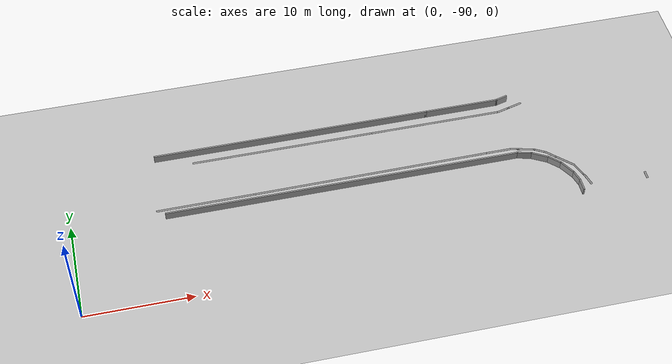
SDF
<sdf version="1.6">
 <world name="default">
  <model name="ground_plane">
   <static>1</static>
   <link name="link">
    <collision name="collision">
     <geometry><plane><normal>0 0 1</normal><size>100 100</size></plane></geometry>
     <surface>
      <contact><collide_bitmask>65535</collide_bitmask></contact>
      <friction><ode><mu>100</mu><mu2>50</mu2></ode></friction>
     </surface>
    </collision>
    <visual name="visual">
     <cast_shadows>0</cast_shadows>
     <geometry><plane><normal>0 0 1</normal><size>100 100</size></plane></geometry>
     <material>
      <script><uri>file://media/materials/scripts/gazebo.material</uri><name>Gazebo/Grey</name></script>
     </material>
    </visual>
   </link>
  </model>
  <model name="GercekDuvarSeritKoyu1">
   <link name="Wall_101">
    <pose>18.8696 -38.2416 0 0 -0 1.56992</pose>
    <inertial>
     <mass>1</mass>
     <inertia><ixx>1</ixx><ixy>0</ixy><ixz>0</ixz><iyy>1</iyy><iyz>0</iyz><izz>1</izz></inertia>
    </inertial>
    <visual name="Wall_101_Visual">
     <pose>0 0 0.375 0 -0 0</pose>
     <geometry><box><size>26.5 0.15 0.75</size></box></geometry>
     <material>
      <script><uri>file://media/materials/scripts/gazebo.material</uri><name>Gazebo/Grey</name></script>
      <ambient>0.5 0.5 0.5 1</ambient>
      <shader type="pixel"><normal_map>__default__</normal_map></shader>
      <diffuse>0.7 0.7 0.7 1</diffuse>
      <specular>0.01 0.01 0.01 1</specular>
      <emissive>0 0 0 1</emissive>
     </material>
     <meta><layer>0</layer></meta>
    </visual>
    <collision name="Wall_101_Collision">
     <pose>0 0 0.375 0 -0 0</pose>
     <geometry><box><size>26.5 0.15 0.75</size></box></geometry>
     <surface>
      <friction>
       <ode><mu>1</mu><mu2>1</mu2><fdir1>0 0 0</fdir1><slip1>0</slip1><slip2>0</slip2></ode>
       <torsional>
        <coefficient>1</coefficient>
        <patch_radius>0</patch_radius>
        <surface_radius>0</surface_radius>
        <use_patch_radius>1</use_patch_radius>
        <ode><slip>0</slip></ode>
       </torsional>
      </friction>
      <bounce><restitution_coefficient>0</restitution_coefficient><threshold>1e+06</threshold></bounce>
      <contact>
       <collide_without_contact>0</collide_without_contact>
       <collide_without_contact_bitmask>1</collide_without_contact_bitmask>
       <collide_bitmask>1</collide_bitmask>
       <ode>
        <soft_cfm>0</soft_cfm>
        <soft_erp>0.2</soft_erp>
        <kp>1e+13</kp>
        <kd>1</kd>
        <max_vel>0.01</max_vel>
        <min_depth>0</min_depth>
       </ode>
       <bullet>
        <split_impulse>1</split_impulse>
        <split_impulse_penetration_threshold>-0.01</split_impulse_penetration_threshold>
        <soft_cfm>0</soft_cfm>
        <soft_erp>0.2</soft_erp>
        <kp>1e+13</kp>
        <kd>1</kd>
       </bullet>
      </contact>
     </surface>
    </collision>
   </link>
   <link name="Wall_103">
    <pose>18.8811 -21.5166 0 0 -0 1.5708</pose>
    <inertial>
     <mass>1</mass>
     <inertia><ixx>1</ixx><ixy>0</ixy><ixz>0</ixz><iyy>1</iyy><iyz>0</iyz><izz>1</izz></inertia>
    </inertial>
    <visual name="Wall_103_Visual">
     <pose>0 0 0.375 0 -0 0</pose>
     <geometry><box><size>7.25 0.15 0.75</size></box></geometry>
     <material>
      <script><uri>file://media/materials/scripts/gazebo.material</uri><name>Gazebo/Grey</name></script>
      <ambient>0.5 0.5 0.5 1</ambient>
      <shader type="pixel"><normal_map>__default__</normal_map></shader>
      <diffuse>0.7 0.7 0.7 1</diffuse>
      <specular>0.01 0.01 0.01 1</specular>
      <emissive>0 0 0 1</emissive>
     </material>
     <meta><layer>0</layer></meta>
    </visual>
    <collision name="Wall_103_Collision">
     <pose>0 0 0.375 0 -0 0</pose>
     <geometry><box><size>7.25 0.15 0.75</size></box></geometry>
     <surface>
      <friction>
       <ode><mu>1</mu><mu2>1</mu2><fdir1>0 0 0</fdir1><slip1>0</slip1><slip2>0</slip2></ode>
       <torsional>
        <coefficient>1</coefficient>
        <patch_radius>0</patch_radius>
        <surface_radius>0</surface_radius>
        <use_patch_radius>1</use_patch_radius>
        <ode><slip>0</slip></ode>
       </torsional>
      </friction>
      <bounce><restitution_coefficient>0</restitution_coefficient><threshold>1e+06</threshold></bounce>
      <contact>
       <collide_without_contact>0</collide_without_contact>
       <collide_without_contact_bitmask>1</collide_without_contact_bitmask>
       <collide_bitmask>1</collide_bitmask>
       <ode>
        <soft_cfm>0</soft_cfm>
        <soft_erp>0.2</soft_erp>
        <kp>1e+13</kp>
        <kd>1</kd>
        <max_vel>0.01</max_vel>
        <min_depth>0</min_depth>
       </ode>
       <bullet>
        <split_impulse>1</split_impulse>
        <split_impulse_penetration_threshold>-0.01</split_impulse_penetration_threshold>
        <soft_cfm>0</soft_cfm>
        <soft_erp>0.2</soft_erp>
        <kp>1e+13</kp>
        <kd>1</kd>
       </bullet>
      </contact>
     </surface>
    </collision>
   </link>
   <link name="Wall_105">
    <pose>18.7386 -17.4356 0 0 -0 1.83298</pose>
    <inertial>
     <mass>1</mass>
     <inertia><ixx>1</ixx><ixy>0</ixy><ixz>0</ixz><iyy>1</iyy><iyz>0</iyz><izz>1</izz></inertia>
    </inertial>
    <visual name="Wall_105_Visual">
     <pose>0 0 0.375 0 -0 0</pose>
     <geometry><box><size>1.25 0.15 0.75</size></box></geometry>
     <material>
      <script><uri>file://media/materials/scripts/gazebo.material</uri><name>Gazebo/Grey</name></script>
      <ambient>0.5 0.5 0.5 1</ambient>
      <shader type="pixel"><normal_map>__default__</normal_map></shader>
      <diffuse>0.7 0.7 0.7 1</diffuse>
      <specular>0.01 0.01 0.01 1</specular>
      <emissive>0 0 0 1</emissive>
     </material>
     <meta><layer>0</layer></meta>
    </visual>
    <collision name="Wall_105_Collision">
     <pose>0 0 0.375 0 -0 0</pose>
     <geometry><box><size>1.25 0.15 0.75</size></box></geometry>
     <surface>
      <friction>
       <ode><mu>1</mu><mu2>1</mu2><fdir1>0 0 0</fdir1><slip1>0</slip1><slip2>0</slip2></ode>
       <torsional>
        <coefficient>1</coefficient>
        <patch_radius>0</patch_radius>
        <surface_radius>0</surface_radius>
        <use_patch_radius>1</use_patch_radius>
        <ode><slip>0</slip></ode>
       </torsional>
      </friction>
      <bounce><restitution_coefficient>0</restitution_coefficient><threshold>1e+06</threshold></bounce>
      <contact>
       <collide_without_contact>0</collide_without_contact>
       <collide_without_contact_bitmask>1</collide_without_contact_bitmask>
       <collide_bitmask>1</collide_bitmask>
       <ode>
        <soft_cfm>0</soft_cfm>
        <soft_erp>0.2</soft_erp>
        <kp>1e+13</kp>
        <kd>1</kd>
        <max_vel>0.01</max_vel>
        <min_depth>0</min_depth>
       </ode>
       <bullet>
        <split_impulse>1</split_impulse>
        <split_impulse_penetration_threshold>-0.01</split_impulse_penetration_threshold>
        <soft_cfm>0</soft_cfm>
        <soft_erp>0.2</soft_erp>
        <kp>1e+13</kp>
        <kd>1</kd>
       </bullet>
      </contact>
     </surface>
    </collision>
   </link>
   <link name="Wall_147">
    <pose>31.0351 -13.2326 0 0 -0 3.14159</pose>
    <inertial>
     <mass>1</mass>
     <inertia><ixx>1</ixx><ixy>0</ixy><ixz>0</ixz><iyy>1</iyy><iyz>0</iyz><izz>1</izz></inertia>
    </inertial>
    <visual name="Wall_147_Visual">
     <pose>0 0 0.375 0 -0 0</pose>
     <geometry><box><size>1.25 0.15 0.75</size></box></geometry>
     <material>
      <script><uri>file://media/materials/scripts/gazebo.material</uri><name>Gazebo/Grey</name></script>
      <ambient>0.5 0.5 0.5 1</ambient>
      <shader type="pixel"><normal_map>__default__</normal_map></shader>
      <diffuse>0.7 0.7 0.7 1</diffuse>
      <specular>0.01 0.01 0.01 1</specular>
      <emissive>0 0 0 1</emissive>
     </material>
     <meta><layer>0</layer></meta>
    </visual>
    <collision name="Wall_147_Collision">
     <pose>0 0 0.375 0 -0 0</pose>
     <geometry><box><size>1.25 0.15 0.75</size></box></geometry>
     <surface>
      <friction>
       <ode><mu>1</mu><mu2>1</mu2><fdir1>0 0 0</fdir1><slip1>0</slip1><slip2>0</slip2></ode>
       <torsional>
        <coefficient>1</coefficient>
        <patch_radius>0</patch_radius>
        <surface_radius>0</surface_radius>
        <use_patch_radius>1</use_patch_radius>
        <ode><slip>0</slip></ode>
       </torsional>
      </friction>
      <bounce><restitution_coefficient>0</restitution_coefficient><threshold>1e+06</threshold></bounce>
      <contact>
       <collide_without_contact>0</collide_without_contact>
       <collide_without_contact_bitmask>1</collide_without_contact_bitmask>
       <collide_bitmask>1</collide_bitmask>
       <ode>
        <soft_cfm>0</soft_cfm>
        <soft_erp>0.2</soft_erp>
        <kp>1e+13</kp>
        <kd>1</kd>
        <max_vel>0.01</max_vel>
        <min_depth>0</min_depth>
       </ode>
       <bullet>
        <split_impulse>1</split_impulse>
        <split_impulse_penetration_threshold>-0.01</split_impulse_penetration_threshold>
        <soft_cfm>0</soft_cfm>
        <soft_erp>0.2</soft_erp>
        <kp>1e+13</kp>
        <kd>1</kd>
       </bullet>
      </contact>
     </surface>
    </collision>
   </link>
   <link name="Wall_148">
    <pose>29.9541 -13.3746 0 0 0 -2.88029</pose>
    <inertial>
     <mass>1</mass>
     <inertia><ixx>1</ixx><ixy>0</ixy><ixz>0</ixz><iyy>1</iyy><iyz>0</iyz><izz>1</izz></inertia>
    </inertial>
    <visual name="Wall_148_Visual">
     <pose>0 0 0.375 0 -0 0</pose>
     <geometry><box><size>1.25 0.15 0.75</size></box></geometry>
     <material>
      <script><uri>file://media/materials/scripts/gazebo.material</uri><name>Gazebo/Grey</name></script>
      <ambient>0.5 0.5 0.5 1</ambient>
      <shader type="pixel"><normal_map>__default__</normal_map></shader>
      <diffuse>0.7 0.7 0.7 1</diffuse>
      <specular>0.01 0.01 0.01 1</specular>
      <emissive>0 0 0 1</emissive>
     </material>
     <meta><layer>0</layer></meta>
    </visual>
    <collision name="Wall_148_Collision">
     <pose>0 0 0.375 0 -0 0</pose>
     <geometry><box><size>1.25 0.15 0.75</size></box></geometry>
     <surface>
      <friction>
       <ode><mu>1</mu><mu2>1</mu2><fdir1>0 0 0</fdir1><slip1>0</slip1><slip2>0</slip2></ode>
       <torsional>
        <coefficient>1</coefficient>
        <patch_radius>0</patch_radius>
        <surface_radius>0</surface_radius>
        <use_patch_radius>1</use_patch_radius>
        <ode><slip>0</slip></ode>
       </torsional>
      </friction>
      <bounce><restitution_coefficient>0</restitution_coefficient><threshold>1e+06</threshold></bounce>
      <contact>
       <collide_without_contact>0</collide_without_contact>
       <collide_without_contact_bitmask>1</collide_without_contact_bitmask>
       <collide_bitmask>1</collide_bitmask>
       <ode>
        <soft_cfm>0</soft_cfm>
        <soft_erp>0.2</soft_erp>
        <kp>1e+13</kp>
        <kd>1</kd>
        <max_vel>0.01</max_vel>
        <min_depth>0</min_depth>
       </ode>
       <bullet>
        <split_impulse>1</split_impulse>
        <split_impulse_penetration_threshold>-0.01</split_impulse_penetration_threshold>
        <soft_cfm>0</soft_cfm>
        <soft_erp>0.2</soft_erp>
        <kp>1e+13</kp>
        <kd>1</kd>
       </bullet>
      </contact>
     </surface>
    </collision>
   </link>
   <link name="Wall_149">
    <pose>28.7301 -13.9166 0 0 0 -2.61811</pose>
    <inertial>
     <mass>1</mass>
     <inertia><ixx>1</ixx><ixy>0</ixy><ixz>0</ixz><iyy>1</iyy><iyz>0</iyz><izz>1</izz></inertia>
    </inertial>
    <visual name="Wall_149_Visual">
     <pose>0 0 0.375 0 -0 0</pose>
     <geometry><box><size>1.75 0.15 0.75</size></box></geometry>
     <material>
      <script><uri>file://media/materials/scripts/gazebo.material</uri><name>Gazebo/Grey</name></script>
      <ambient>0.5 0.5 0.5 1</ambient>
      <shader type="pixel"><normal_map>__default__</normal_map></shader>
      <diffuse>0.7 0.7 0.7 1</diffuse>
      <specular>0.01 0.01 0.01 1</specular>
      <emissive>0 0 0 1</emissive>
     </material>
     <meta><layer>0</layer></meta>
    </visual>
    <collision name="Wall_149_Collision">
     <pose>0 0 0.375 0 -0 0</pose>
     <geometry><box><size>1.75 0.15 0.75</size></box></geometry>
     <surface>
      <friction>
       <ode><mu>1</mu><mu2>1</mu2><fdir1>0 0 0</fdir1><slip1>0</slip1><slip2>0</slip2></ode>
       <torsional>
        <coefficient>1</coefficient>
        <patch_radius>0</patch_radius>
        <surface_radius>0</surface_radius>
        <use_patch_radius>1</use_patch_radius>
        <ode><slip>0</slip></ode>
       </torsional>
      </friction>
      <bounce><restitution_coefficient>0</restitution_coefficient><threshold>1e+06</threshold></bounce>
      <contact>
       <collide_without_contact>0</collide_without_contact>
       <collide_without_contact_bitmask>1</collide_without_contact_bitmask>
       <collide_bitmask>1</collide_bitmask>
       <ode>
        <soft_cfm>0</soft_cfm>
        <soft_erp>0.2</soft_erp>
        <kp>1e+13</kp>
        <kd>1</kd>
        <max_vel>0.01</max_vel>
        <min_depth>0</min_depth>
       </ode>
       <bullet>
        <split_impulse>1</split_impulse>
        <split_impulse_penetration_threshold>-0.01</split_impulse_penetration_threshold>
        <soft_cfm>0</soft_cfm>
        <soft_erp>0.2</soft_erp>
        <kp>1e+13</kp>
        <kd>1</kd>
       </bullet>
      </contact>
     </surface>
    </collision>
   </link>
   <link name="Wall_150">
    <pose>27.5601 -14.7941 0 0 0 -2.35567</pose>
    <inertial>
     <mass>1</mass>
     <inertia><ixx>1</ixx><ixy>0</ixy><ixz>0</ixz><iyy>1</iyy><iyz>0</iyz><izz>1</izz></inertia>
    </inertial>
    <visual name="Wall_150_Visual">
     <pose>0 0 0.375 0 -0 0</pose>
     <geometry><box><size>1.5 0.15 0.75</size></box></geometry>
     <material>
      <script><uri>file://media/materials/scripts/gazebo.material</uri><name>Gazebo/Grey</name></script>
      <ambient>0.5 0.5 0.5 1</ambient>
      <shader type="pixel"><normal_map>__default__</normal_map></shader>
      <diffuse>0.7 0.7 0.7 1</diffuse>
      <specular>0.01 0.01 0.01 1</specular>
      <emissive>0 0 0 1</emissive>
     </material>
     <meta><layer>0</layer></meta>
    </visual>
    <collision name="Wall_150_Collision">
     <pose>0 0 0.375 0 -0 0</pose>
     <geometry><box><size>1.5 0.15 0.75</size></box></geometry>
     <surface>
      <friction>
       <ode><mu>1</mu><mu2>1</mu2><fdir1>0 0 0</fdir1><slip1>0</slip1><slip2>0</slip2></ode>
       <torsional>
        <coefficient>1</coefficient>
        <patch_radius>0</patch_radius>
        <surface_radius>0</surface_radius>
        <use_patch_radius>1</use_patch_radius>
        <ode><slip>0</slip></ode>
       </torsional>
      </friction>
      <bounce><restitution_coefficient>0</restitution_coefficient><threshold>1e+06</threshold></bounce>
      <contact>
       <collide_without_contact>0</collide_without_contact>
       <collide_without_contact_bitmask>1</collide_without_contact_bitmask>
       <collide_bitmask>1</collide_bitmask>
       <ode>
        <soft_cfm>0</soft_cfm>
        <soft_erp>0.2</soft_erp>
        <kp>1e+13</kp>
        <kd>1</kd>
        <max_vel>0.01</max_vel>
        <min_depth>0</min_depth>
       </ode>
       <bullet>
        <split_impulse>1</split_impulse>
        <split_impulse_penetration_threshold>-0.01</split_impulse_penetration_threshold>
        <soft_cfm>0</soft_cfm>
        <soft_erp>0.2</soft_erp>
        <kp>1e+13</kp>
        <kd>1</kd>
       </bullet>
      </contact>
     </surface>
    </collision>
   </link>
   <link name="Wall_151">
    <pose>26.6831 -15.9641 0 0 0 -2.09459</pose>
    <inertial>
     <mass>1</mass>
     <inertia><ixx>1</ixx><ixy>0</ixy><ixz>0</ixz><iyy>1</iyy><iyz>0</iyz><izz>1</izz></inertia>
    </inertial>
    <visual name="Wall_151_Visual">
     <pose>0 0 0.375 0 -0 0</pose>
     <geometry><box><size>1.75 0.15 0.75</size></box></geometry>
     <material>
      <script><uri>file://media/materials/scripts/gazebo.material</uri><name>Gazebo/Grey</name></script>
      <ambient>0.5 0.5 0.5 1</ambient>
      <shader type="pixel"><normal_map>__default__</normal_map></shader>
      <diffuse>0.7 0.7 0.7 1</diffuse>
      <specular>0.01 0.01 0.01 1</specular>
      <emissive>0 0 0 1</emissive>
     </material>
     <meta><layer>0</layer></meta>
    </visual>
    <collision name="Wall_151_Collision">
     <pose>0 0 0.375 0 -0 0</pose>
     <geometry><box><size>1.75 0.15 0.75</size></box></geometry>
     <surface>
      <friction>
       <ode><mu>1</mu><mu2>1</mu2><fdir1>0 0 0</fdir1><slip1>0</slip1><slip2>0</slip2></ode>
       <torsional>
        <coefficient>1</coefficient>
        <patch_radius>0</patch_radius>
        <surface_radius>0</surface_radius>
        <use_patch_radius>1</use_patch_radius>
        <ode><slip>0</slip></ode>
       </torsional>
      </friction>
      <bounce><restitution_coefficient>0</restitution_coefficient><threshold>1e+06</threshold></bounce>
      <contact>
       <collide_without_contact>0</collide_without_contact>
       <collide_without_contact_bitmask>1</collide_without_contact_bitmask>
       <collide_bitmask>1</collide_bitmask>
       <ode>
        <soft_cfm>0</soft_cfm>
        <soft_erp>0.2</soft_erp>
        <kp>1e+13</kp>
        <kd>1</kd>
        <max_vel>0.01</max_vel>
        <min_depth>0</min_depth>
       </ode>
       <bullet>
        <split_impulse>1</split_impulse>
        <split_impulse_penetration_threshold>-0.01</split_impulse_penetration_threshold>
        <soft_cfm>0</soft_cfm>
        <soft_erp>0.2</soft_erp>
        <kp>1e+13</kp>
        <kd>1</kd>
       </bullet>
      </contact>
     </surface>
    </collision>
   </link>
   <link name="Wall_152">
    <pose>26.1081 -17.3086 0 0 0 -1.83302</pose>
    <inertial>
     <mass>1</mass>
     <inertia><ixx>1</ixx><ixy>0</ixy><ixz>0</ixz><iyy>1</iyy><iyz>0</iyz><izz>1</izz></inertia>
    </inertial>
    <visual name="Wall_152_Visual">
     <pose>0 0 0.375 0 -0 0</pose>
     <geometry><box><size>1.5 0.15 0.75</size></box></geometry>
     <material>
      <script><uri>file://media/materials/scripts/gazebo.material</uri><name>Gazebo/Grey</name></script>
      <ambient>0.5 0.5 0.5 1</ambient>
      <shader type="pixel"><normal_map>__default__</normal_map></shader>
      <diffuse>0.7 0.7 0.7 1</diffuse>
      <specular>0.01 0.01 0.01 1</specular>
      <emissive>0 0 0 1</emissive>
     </material>
     <meta><layer>0</layer></meta>
    </visual>
    <collision name="Wall_152_Collision">
     <pose>0 0 0.375 0 -0 0</pose>
     <geometry><box><size>1.5 0.15 0.75</size></box></geometry>
     <surface>
      <friction>
       <ode><mu>1</mu><mu2>1</mu2><fdir1>0 0 0</fdir1><slip1>0</slip1><slip2>0</slip2></ode>
       <torsional>
        <coefficient>1</coefficient>
        <patch_radius>0</patch_radius>
        <surface_radius>0</surface_radius>
        <use_patch_radius>1</use_patch_radius>
        <ode><slip>0</slip></ode>
       </torsional>
      </friction>
      <bounce><restitution_coefficient>0</restitution_coefficient><threshold>1e+06</threshold></bounce>
      <contact>
       <collide_without_contact>0</collide_without_contact>
       <collide_without_contact_bitmask>1</collide_without_contact_bitmask>
       <collide_bitmask>1</collide_bitmask>
       <ode>
        <soft_cfm>0</soft_cfm>
        <soft_erp>0.2</soft_erp>
        <kp>1e+13</kp>
        <kd>1</kd>
        <max_vel>0.01</max_vel>
        <min_depth>0</min_depth>
       </ode>
       <bullet>
        <split_impulse>1</split_impulse>
        <split_impulse_penetration_threshold>-0.01</split_impulse_penetration_threshold>
        <soft_cfm>0</soft_cfm>
        <soft_erp>0.2</soft_erp>
        <kp>1e+13</kp>
        <kd>1</kd>
       </bullet>
      </contact>
     </surface>
    </collision>
   </link>
   <link name="Wall_154">
    <pose>25.9331 -34.6356 0 0 0 -1.5708</pose>
    <inertial>
     <mass>1</mass>
     <inertia><ixx>1</ixx><ixy>0</ixy><ixz>0</ixz><iyy>1</iyy><iyz>0</iyz><izz>1</izz></inertia>
    </inertial>
    <visual name="Wall_154_Visual">
     <pose>0 0 0.375 0 -0 0</pose>
     <geometry><box><size>33.5 0.15 0.75</size></box></geometry>
     <material>
      <script><uri>file://media/materials/scripts/gazebo.material</uri><name>Gazebo/Grey</name></script>
      <ambient>0.5 0.5 0.5 1</ambient>
      <shader type="pixel"><normal_map>__default__</normal_map></shader>
      <diffuse>0.7 0.7 0.7 1</diffuse>
      <specular>0.01 0.01 0.01 1</specular>
      <emissive>0 0 0 1</emissive>
     </material>
     <meta><layer>0</layer></meta>
    </visual>
    <collision name="Wall_154_Collision">
     <pose>0 0 0.375 0 -0 0</pose>
     <geometry><box><size>33.5 0.15 0.75</size></box></geometry>
     <surface>
      <friction>
       <ode><mu>1</mu><mu2>1</mu2><fdir1>0 0 0</fdir1><slip1>0</slip1><slip2>0</slip2></ode>
       <torsional>
        <coefficient>1</coefficient>
        <patch_radius>0</patch_radius>
        <surface_radius>0</surface_radius>
        <use_patch_radius>1</use_patch_radius>
        <ode><slip>0</slip></ode>
       </torsional>
      </friction>
      <bounce><restitution_coefficient>0</restitution_coefficient><threshold>1e+06</threshold></bounce>
      <contact>
       <collide_without_contact>0</collide_without_contact>
       <collide_without_contact_bitmask>1</collide_without_contact_bitmask>
       <collide_bitmask>1</collide_bitmask>
       <ode>
        <soft_cfm>0</soft_cfm>
        <soft_erp>0.2</soft_erp>
        <kp>1e+13</kp>
        <kd>1</kd>
        <max_vel>0.01</max_vel>
        <min_depth>0</min_depth>
       </ode>
       <bullet>
        <split_impulse>1</split_impulse>
        <split_impulse_penetration_threshold>-0.01</split_impulse_penetration_threshold>
        <soft_cfm>0</soft_cfm>
        <soft_erp>0.2</soft_erp>
        <kp>1e+13</kp>
        <kd>1</kd>
       </bullet>
      </contact>
     </surface>
    </collision>
   </link>
   <link name="Wall_390">
    <pose>19.8401 -39.2376 0 0 -0 1.5708</pose>
    <visual name="Wall_390_Visual">
     <pose>0 0 0.005 0 -0 0</pose>
     <geometry><box><size>17.5502 0.2 0.01</size></box></geometry>
     <material>
      <script><uri>file://media/materials/scripts/gazebo.material</uri><name>Gazebo/Grey</name></script>
      <ambient>1 1 1 1</ambient>
      <shader type="pixel"/>
     </material>
     <meta><layer>0</layer></meta>
    </visual>
    <collision name="Wall_390_Collision">
     <pose>0 0 0.005 0 -0 0</pose>
     <geometry><box><size>17.5502 0.2 0.01</size></box></geometry>
     <surface>
      <friction>
       <ode><mu>1</mu><mu2>1</mu2><fdir1>0 0 0</fdir1><slip1>0</slip1><slip2>0</slip2></ode>
       <torsional>
        <coefficient>1</coefficient>
        <patch_radius>0</patch_radius>
        <surface_radius>0</surface_radius>
        <use_patch_radius>1</use_patch_radius>
        <ode><slip>0</slip></ode>
       </torsional>
      </friction>
      <bounce><restitution_coefficient>0</restitution_coefficient><threshold>1e+06</threshold></bounce>
      <contact>
       <collide_without_contact>0</collide_without_contact>
       <collide_without_contact_bitmask>1</collide_without_contact_bitmask>
       <collide_bitmask>1</collide_bitmask>
       <ode>
        <soft_cfm>0</soft_cfm>
        <soft_erp>0.2</soft_erp>
        <kp>1e+13</kp>
        <kd>1</kd>
        <max_vel>0.01</max_vel>
        <min_depth>0</min_depth>
       </ode>
       <bullet>
        <split_impulse>1</split_impulse>
        <split_impulse_penetration_threshold>-0.01</split_impulse_penetration_threshold>
        <soft_cfm>0</soft_cfm>
        <soft_erp>0.2</soft_erp>
        <kp>1e+13</kp>
        <kd>1</kd>
       </bullet>
      </contact>
     </surface>
    </collision>
   </link>
   <link name="Wall_392">
    <pose>19.8401 -24.2626 0 0 -0 1.5708</pose>
    <visual name="Wall_392_Visual">
     <pose>0 0 0.005 0 -0 0</pose>
     <geometry><box><size>12.8002 0.2 0.01</size></box></geometry>
     <material>
      <script><uri>file://media/materials/scripts/gazebo.material</uri><name>Gazebo/Grey</name></script>
      <ambient>1 1 1 1</ambient>
      <shader type="pixel"/>
     </material>
     <meta><layer>0</layer></meta>
    </visual>
    <collision name="Wall_392_Collision">
     <pose>0 0 0.005 0 -0 0</pose>
     <geometry><box><size>12.8002 0.2 0.01</size></box></geometry>
     <surface>
      <friction>
       <ode><mu>1</mu><mu2>1</mu2><fdir1>0 0 0</fdir1><slip1>0</slip1><slip2>0</slip2></ode>
       <torsional>
        <coefficient>1</coefficient>
        <patch_radius>0</patch_radius>
        <surface_radius>0</surface_radius>
        <use_patch_radius>1</use_patch_radius>
        <ode><slip>0</slip></ode>
       </torsional>
      </friction>
      <bounce><restitution_coefficient>0</restitution_coefficient><threshold>1e+06</threshold></bounce>
      <contact>
       <collide_without_contact>0</collide_without_contact>
       <collide_without_contact_bitmask>1</collide_without_contact_bitmask>
       <collide_bitmask>1</collide_bitmask>
       <ode>
        <soft_cfm>0</soft_cfm>
        <soft_erp>0.2</soft_erp>
        <kp>1e+13</kp>
        <kd>1</kd>
        <max_vel>0.01</max_vel>
        <min_depth>0</min_depth>
       </ode>
       <bullet>
        <split_impulse>1</split_impulse>
        <split_impulse_penetration_threshold>-0.01</split_impulse_penetration_threshold>
        <soft_cfm>0</soft_cfm>
        <soft_erp>0.2</soft_erp>
        <kp>1e+13</kp>
        <kd>1</kd>
       </bullet>
      </contact>
     </surface>
    </collision>
   </link>
   <link name="Wall_394">
    <pose>19.6976 -17.4311 0 0 -0 1.83275</pose>
    <visual name="Wall_394_Visual">
     <pose>0 0 0.005 0 -0 0</pose>
     <geometry><box><size>1.30019 0.2 0.01</size></box></geometry>
     <material>
      <script><uri>file://media/materials/scripts/gazebo.material</uri><name>Gazebo/Grey</name></script>
      <ambient>1 1 1 1</ambient>
      <shader type="pixel"/>
     </material>
     <meta><layer>0</layer></meta>
    </visual>
    <collision name="Wall_394_Collision">
     <pose>0 0 0.005 0 -0 0</pose>
     <geometry><box><size>1.30019 0.2 0.01</size></box></geometry>
     <surface>
      <friction>
       <ode><mu>1</mu><mu2>1</mu2><fdir1>0 0 0</fdir1><slip1>0</slip1><slip2>0</slip2></ode>
       <torsional>
        <coefficient>1</coefficient>
        <patch_radius>0</patch_radius>
        <surface_radius>0</surface_radius>
        <use_patch_radius>1</use_patch_radius>
        <ode><slip>0</slip></ode>
       </torsional>
      </friction>
      <bounce><restitution_coefficient>0</restitution_coefficient><threshold>1e+06</threshold></bounce>
      <contact>
       <collide_without_contact>0</collide_without_contact>
       <collide_without_contact_bitmask>1</collide_without_contact_bitmask>
       <collide_bitmask>1</collide_bitmask>
       <ode>
        <soft_cfm>0</soft_cfm>
        <soft_erp>0.2</soft_erp>
        <kp>1e+13</kp>
        <kd>1</kd>
        <max_vel>0.01</max_vel>
        <min_depth>0</min_depth>
       </ode>
       <bullet>
        <split_impulse>1</split_impulse>
        <split_impulse_penetration_threshold>-0.01</split_impulse_penetration_threshold>
        <soft_cfm>0</soft_cfm>
        <soft_erp>0.2</soft_erp>
        <kp>1e+13</kp>
        <kd>1</kd>
       </bullet>
      </contact>
     </surface>
    </collision>
   </link>
   <link name="Wall_395">
    <pose>19.3806 -16.2476 0 0 -0 1.83231</pose>
    <visual name="Wall_395_Visual">
     <pose>0 0 0.005 0 -0 0</pose>
     <geometry><box><size>1.54964 0.2 0.01</size></box></geometry>
     <material>
      <script><uri>file://media/materials/scripts/gazebo.material</uri><name>Gazebo/Grey</name></script>
      <ambient>1 1 1 1</ambient>
      <shader type="pixel"/>
     </material>
     <meta><layer>0</layer></meta>
    </visual>
    <collision name="Wall_395_Collision">
     <pose>0 0 0.005 0 -0 0</pose>
     <geometry><box><size>1.54964 0.2 0.01</size></box></geometry>
     <surface>
      <friction>
       <ode><mu>1</mu><mu2>1</mu2><fdir1>0 0 0</fdir1><slip1>0</slip1><slip2>0</slip2></ode>
       <torsional>
        <coefficient>1</coefficient>
        <patch_radius>0</patch_radius>
        <surface_radius>0</surface_radius>
        <use_patch_radius>1</use_patch_radius>
        <ode><slip>0</slip></ode>
       </torsional>
      </friction>
      <bounce><restitution_coefficient>0</restitution_coefficient><threshold>1e+06</threshold></bounce>
      <contact>
       <collide_without_contact>0</collide_without_contact>
       <collide_without_contact_bitmask>1</collide_without_contact_bitmask>
       <collide_bitmask>1</collide_bitmask>
       <ode>
        <soft_cfm>0</soft_cfm>
        <soft_erp>0.2</soft_erp>
        <kp>1e+13</kp>
        <kd>1</kd>
        <max_vel>0.01</max_vel>
        <min_depth>0</min_depth>
       </ode>
       <bullet>
        <split_impulse>1</split_impulse>
        <split_impulse_penetration_threshold>-0.01</split_impulse_penetration_threshold>
        <soft_cfm>0</soft_cfm>
        <soft_erp>0.2</soft_erp>
        <kp>1e+13</kp>
        <kd>1</kd>
       </bullet>
      </contact>
     </surface>
    </collision>
   </link>
   <link name="Wall_450">
    <pose>30.0211 -12.2121 0 0 0 -2.87941</pose>
    <visual name="Wall_450_Visual">
     <pose>0 0 0.005 0 -0 0</pose>
     <geometry><box><size>1.29973 0.2 0.01</size></box></geometry>
     <material>
      <script><uri>file://media/materials/scripts/gazebo.material</uri><name>Gazebo/Grey</name></script>
      <ambient>1 1 1 1</ambient>
      <shader type="pixel"/>
     </material>
     <meta><layer>0</layer></meta>
    </visual>
    <collision name="Wall_450_Collision">
     <pose>0 0 0.005 0 -0 0</pose>
     <geometry><box><size>1.29973 0.2 0.01</size></box></geometry>
     <surface>
      <friction>
       <ode><mu>1</mu><mu2>1</mu2><fdir1>0 0 0</fdir1><slip1>0</slip1><slip2>0</slip2></ode>
       <torsional>
        <coefficient>1</coefficient>
        <patch_radius>0</patch_radius>
        <surface_radius>0</surface_radius>
        <use_patch_radius>1</use_patch_radius>
        <ode><slip>0</slip></ode>
       </torsional>
      </friction>
      <bounce><restitution_coefficient>0</restitution_coefficient><threshold>1e+06</threshold></bounce>
      <contact>
       <collide_without_contact>0</collide_without_contact>
       <collide_without_contact_bitmask>1</collide_without_contact_bitmask>
       <collide_bitmask>1</collide_bitmask>
       <ode>
        <soft_cfm>0</soft_cfm>
        <soft_erp>0.2</soft_erp>
        <kp>1e+13</kp>
        <kd>1</kd>
        <max_vel>0.01</max_vel>
        <min_depth>0</min_depth>
       </ode>
       <bullet>
        <split_impulse>1</split_impulse>
        <split_impulse_penetration_threshold>-0.01</split_impulse_penetration_threshold>
        <soft_cfm>0</soft_cfm>
        <soft_erp>0.2</soft_erp>
        <kp>1e+13</kp>
        <kd>1</kd>
       </bullet>
      </contact>
     </surface>
    </collision>
   </link>
   <link name="Wall_451">
    <pose>28.7151 -12.6671 0 0 0 -2.75831</pose>
    <visual name="Wall_451_Visual">
     <pose>0 0 0.005 0 -0 0</pose>
     <geometry><box><size>1.82142 0.15 0.01</size></box></geometry>
     <material>
      <script><uri>file://media/materials/scripts/gazebo.material</uri><name>Gazebo/Grey</name></script>
      <ambient>1 1 1 1</ambient>
      <shader type="pixel"/>
     </material>
     <meta><layer>0</layer></meta>
    </visual>
    <collision name="Wall_451_Collision">
     <pose>0 0 0.005 0 -0 0</pose>
     <geometry><box><size>1.82142 0.15 0.01</size></box></geometry>
     <surface>
      <friction>
       <ode><mu>1</mu><mu2>1</mu2><fdir1>0 0 0</fdir1><slip1>0</slip1><slip2>0</slip2></ode>
       <torsional>
        <coefficient>1</coefficient>
        <patch_radius>0</patch_radius>
        <surface_radius>0</surface_radius>
        <use_patch_radius>1</use_patch_radius>
        <ode><slip>0</slip></ode>
       </torsional>
      </friction>
      <bounce><restitution_coefficient>0</restitution_coefficient><threshold>1e+06</threshold></bounce>
      <contact>
       <collide_without_contact>0</collide_without_contact>
       <collide_without_contact_bitmask>1</collide_without_contact_bitmask>
       <collide_bitmask>1</collide_bitmask>
       <ode>
        <soft_cfm>0</soft_cfm>
        <soft_erp>0.2</soft_erp>
        <kp>1e+13</kp>
        <kd>1</kd>
        <max_vel>0.01</max_vel>
        <min_depth>0</min_depth>
       </ode>
       <bullet>
        <split_impulse>1</split_impulse>
        <split_impulse_penetration_threshold>-0.01</split_impulse_penetration_threshold>
        <soft_cfm>0</soft_cfm>
        <soft_erp>0.2</soft_erp>
        <kp>1e+13</kp>
        <kd>1</kd>
       </bullet>
      </contact>
     </surface>
    </collision>
   </link>
   <link name="Wall_452">
    <pose>27.2976 -13.6336 0 0 0 -2.34733</pose>
    <visual name="Wall_452_Visual">
     <pose>0 0 0.005 0 -0 0</pose>
     <geometry><box><size>2.03405 0.2 0.01</size></box></geometry>
     <material>
      <script><uri>file://media/materials/scripts/gazebo.material</uri><name>Gazebo/Grey</name></script>
      <ambient>1 1 1 1</ambient>
      <shader type="pixel"/>
     </material>
     <meta><layer>0</layer></meta>
    </visual>
    <collision name="Wall_452_Collision">
     <pose>0 0 0.005 0 -0 0</pose>
     <geometry><box><size>2.03405 0.2 0.01</size></box></geometry>
     <surface>
      <friction>
       <ode><mu>1</mu><mu2>1</mu2><fdir1>0 0 0</fdir1><slip1>0</slip1><slip2>0</slip2></ode>
       <torsional>
        <coefficient>1</coefficient>
        <patch_radius>0</patch_radius>
        <surface_radius>0</surface_radius>
        <use_patch_radius>1</use_patch_radius>
        <ode><slip>0</slip></ode>
       </torsional>
      </friction>
      <bounce><restitution_coefficient>0</restitution_coefficient><threshold>1e+06</threshold></bounce>
      <contact>
       <collide_without_contact>0</collide_without_contact>
       <collide_without_contact_bitmask>1</collide_without_contact_bitmask>
       <collide_bitmask>1</collide_bitmask>
       <ode>
        <soft_cfm>0</soft_cfm>
        <soft_erp>0.2</soft_erp>
        <kp>1e+13</kp>
        <kd>1</kd>
        <max_vel>0.01</max_vel>
        <min_depth>0</min_depth>
       </ode>
       <bullet>
        <split_impulse>1</split_impulse>
        <split_impulse_penetration_threshold>-0.01</split_impulse_penetration_threshold>
        <soft_cfm>0</soft_cfm>
        <soft_erp>0.2</soft_erp>
        <kp>1e+13</kp>
        <kd>1</kd>
       </bullet>
      </contact>
     </surface>
    </collision>
   </link>
   <link name="Wall_456">
    <pose>26.2661 -14.6766 0 0 0 -2.35619</pose>
    <visual name="Wall_456_Visual">
     <pose>0 0 0.005 0 -0 0</pose>
     <geometry><box><size>1.30045 0.2 0.01</size></box></geometry>
     <material>
      <script><uri>file://media/materials/scripts/gazebo.material</uri><name>Gazebo/Grey</name></script>
      <ambient>1 1 1 1</ambient>
      <shader type="pixel"/>
     </material>
     <meta><layer>0</layer></meta>
    </visual>
    <collision name="Wall_456_Collision">
     <pose>0 0 0.005 0 -0 0</pose>
     <geometry><box><size>1.30045 0.2 0.01</size></box></geometry>
     <surface>
      <friction>
       <ode><mu>1</mu><mu2>1</mu2><fdir1>0 0 0</fdir1><slip1>0</slip1><slip2>0</slip2></ode>
       <torsional>
        <coefficient>1</coefficient>
        <patch_radius>0</patch_radius>
        <surface_radius>0</surface_radius>
        <use_patch_radius>1</use_patch_radius>
        <ode><slip>0</slip></ode>
       </torsional>
      </friction>
      <bounce><restitution_coefficient>0</restitution_coefficient><threshold>1e+06</threshold></bounce>
      <contact>
       <collide_without_contact>0</collide_without_contact>
       <collide_without_contact_bitmask>1</collide_without_contact_bitmask>
       <collide_bitmask>1</collide_bitmask>
       <ode>
        <soft_cfm>0</soft_cfm>
        <soft_erp>0.2</soft_erp>
        <kp>1e+13</kp>
        <kd>1</kd>
        <max_vel>0.01</max_vel>
        <min_depth>0</min_depth>
       </ode>
       <bullet>
        <split_impulse>1</split_impulse>
        <split_impulse_penetration_threshold>-0.01</split_impulse_penetration_threshold>
        <soft_cfm>0</soft_cfm>
        <soft_erp>0.2</soft_erp>
        <kp>1e+13</kp>
        <kd>1</kd>
       </bullet>
      </contact>
     </surface>
    </collision>
   </link>
   <link name="Wall_457">
    <pose>25.6021 -15.5421 0 0 0 -2.09423</pose>
    <visual name="Wall_457_Visual">
     <pose>0 0 0.005 0 -0 0</pose>
     <geometry><box><size>1.30014 0.2 0.01</size></box></geometry>
     <material>
      <script><uri>file://media/materials/scripts/gazebo.material</uri><name>Gazebo/Grey</name></script>
      <ambient>1 1 1 1</ambient>
      <shader type="pixel"/>
     </material>
     <meta><layer>0</layer></meta>
    </visual>
    <collision name="Wall_457_Collision">
     <pose>0 0 0.005 0 -0 0</pose>
     <geometry><box><size>1.30014 0.2 0.01</size></box></geometry>
     <surface>
      <friction>
       <ode><mu>1</mu><mu2>1</mu2><fdir1>0 0 0</fdir1><slip1>0</slip1><slip2>0</slip2></ode>
       <torsional>
        <coefficient>1</coefficient>
        <patch_radius>0</patch_radius>
        <surface_radius>0</surface_radius>
        <use_patch_radius>1</use_patch_radius>
        <ode><slip>0</slip></ode>
       </torsional>
      </friction>
      <bounce><restitution_coefficient>0</restitution_coefficient><threshold>1e+06</threshold></bounce>
      <contact>
       <collide_without_contact>0</collide_without_contact>
       <collide_without_contact_bitmask>1</collide_without_contact_bitmask>
       <collide_bitmask>1</collide_bitmask>
       <ode>
        <soft_cfm>0</soft_cfm>
        <soft_erp>0.2</soft_erp>
        <kp>1e+13</kp>
        <kd>1</kd>
        <max_vel>0.01</max_vel>
        <min_depth>0</min_depth>
       </ode>
       <bullet>
        <split_impulse>1</split_impulse>
        <split_impulse_penetration_threshold>-0.01</split_impulse_penetration_threshold>
        <soft_cfm>0</soft_cfm>
        <soft_erp>0.2</soft_erp>
        <kp>1e+13</kp>
        <kd>1</kd>
       </bullet>
      </contact>
     </surface>
    </collision>
   </link>
   <link name="Wall_458">
    <pose>25.1201 -16.7911 0 0 0 -1.83261</pose>
    <visual name="Wall_458_Visual">
     <pose>0 0 0.005 0 -0 0</pose>
     <geometry><box><size>1.79972 0.2 0.01</size></box></geometry>
     <material>
      <script><uri>file://media/materials/scripts/gazebo.material</uri><name>Gazebo/Grey</name></script>
      <ambient>1 1 1 1</ambient>
      <shader type="pixel"/>
     </material>
     <meta><layer>0</layer></meta>
    </visual>
    <collision name="Wall_458_Collision">
     <pose>0 0 0.005 0 -0 0</pose>
     <geometry><box><size>1.79972 0.2 0.01</size></box></geometry>
     <surface>
      <friction>
       <ode><mu>1</mu><mu2>1</mu2><fdir1>0 0 0</fdir1><slip1>0</slip1><slip2>0</slip2></ode>
       <torsional>
        <coefficient>1</coefficient>
        <patch_radius>0</patch_radius>
        <surface_radius>0</surface_radius>
        <use_patch_radius>1</use_patch_radius>
        <ode><slip>0</slip></ode>
       </torsional>
      </friction>
      <bounce><restitution_coefficient>0</restitution_coefficient><threshold>1e+06</threshold></bounce>
      <contact>
       <collide_without_contact>0</collide_without_contact>
       <collide_without_contact_bitmask>1</collide_without_contact_bitmask>
       <collide_bitmask>1</collide_bitmask>
       <ode>
        <soft_cfm>0</soft_cfm>
        <soft_erp>0.2</soft_erp>
        <kp>1e+13</kp>
        <kd>1</kd>
        <max_vel>0.01</max_vel>
        <min_depth>0</min_depth>
       </ode>
       <bullet>
        <split_impulse>1</split_impulse>
        <split_impulse_penetration_threshold>-0.01</split_impulse_penetration_threshold>
        <soft_cfm>0</soft_cfm>
        <soft_erp>0.2</soft_erp>
        <kp>1e+13</kp>
        <kd>1</kd>
       </bullet>
      </contact>
     </surface>
    </collision>
   </link>
   <link name="Wall_461">
    <pose>24.8351 -17.8536 0 0 0 -1.83354</pose>
    <visual name="Wall_461_Visual">
     <pose>0 0 0.005 0 -0 0</pose>
     <geometry><box><size>0.800214 0.2 0.01</size></box></geometry>
     <material>
      <script><uri>file://media/materials/scripts/gazebo.material</uri><name>Gazebo/Grey</name></script>
      <ambient>1 1 1 1</ambient>
      <shader type="pixel"/>
     </material>
     <meta><layer>0</layer></meta>
    </visual>
    <collision name="Wall_461_Collision">
     <pose>0 0 0.005 0 -0 0</pose>
     <geometry><box><size>0.800214 0.2 0.01</size></box></geometry>
     <surface>
      <friction>
       <ode><mu>1</mu><mu2>1</mu2><fdir1>0 0 0</fdir1><slip1>0</slip1><slip2>0</slip2></ode>
       <torsional>
        <coefficient>1</coefficient>
        <patch_radius>0</patch_radius>
        <surface_radius>0</surface_radius>
        <use_patch_radius>1</use_patch_radius>
        <ode><slip>0</slip></ode>
       </torsional>
      </friction>
      <bounce><restitution_coefficient>0</restitution_coefficient><threshold>1e+06</threshold></bounce>
      <contact>
       <collide_without_contact>0</collide_without_contact>
       <collide_without_contact_bitmask>1</collide_without_contact_bitmask>
       <collide_bitmask>1</collide_bitmask>
       <ode>
        <soft_cfm>0</soft_cfm>
        <soft_erp>0.2</soft_erp>
        <kp>1e+13</kp>
        <kd>1</kd>
        <max_vel>0.01</max_vel>
        <min_depth>0</min_depth>
       </ode>
       <bullet>
        <split_impulse>1</split_impulse>
        <split_impulse_penetration_threshold>-0.01</split_impulse_penetration_threshold>
        <soft_cfm>0</soft_cfm>
        <soft_erp>0.2</soft_erp>
        <kp>1e+13</kp>
        <kd>1</kd>
       </bullet>
      </contact>
     </surface>
    </collision>
   </link>
   <link name="Wall_462">
    <pose>24.7571 -19.3186 0 0 0 -1.5708</pose>
    <visual name="Wall_462_Visual">
     <pose>0 0 0.005 0 -0 0</pose>
     <geometry><box><size>2.54968 0.2 0.01</size></box></geometry>
     <material>
      <script><uri>file://media/materials/scripts/gazebo.material</uri><name>Gazebo/Grey</name></script>
      <ambient>1 1 1 1</ambient>
      <shader type="pixel"/>
     </material>
     <meta><layer>0</layer></meta>
    </visual>
    <collision name="Wall_462_Collision">
     <pose>0 0 0.005 0 -0 0</pose>
     <geometry><box><size>2.54968 0.2 0.01</size></box></geometry>
     <surface>
      <friction>
       <ode><mu>1</mu><mu2>1</mu2><fdir1>0 0 0</fdir1><slip1>0</slip1><slip2>0</slip2></ode>
       <torsional>
        <coefficient>1</coefficient>
        <patch_radius>0</patch_radius>
        <surface_radius>0</surface_radius>
        <use_patch_radius>1</use_patch_radius>
        <ode><slip>0</slip></ode>
       </torsional>
      </friction>
      <bounce><restitution_coefficient>0</restitution_coefficient><threshold>1e+06</threshold></bounce>
      <contact>
       <collide_without_contact>0</collide_without_contact>
       <collide_without_contact_bitmask>1</collide_without_contact_bitmask>
       <collide_bitmask>1</collide_bitmask>
       <ode>
        <soft_cfm>0</soft_cfm>
        <soft_erp>0.2</soft_erp>
        <kp>1e+13</kp>
        <kd>1</kd>
        <max_vel>0.01</max_vel>
        <min_depth>0</min_depth>
       </ode>
       <bullet>
        <split_impulse>1</split_impulse>
        <split_impulse_penetration_threshold>-0.01</split_impulse_penetration_threshold>
        <soft_cfm>0</soft_cfm>
        <soft_erp>0.2</soft_erp>
        <kp>1e+13</kp>
        <kd>1</kd>
       </bullet>
      </contact>
     </surface>
    </collision>
   </link>
   <link name="Wall_464">
    <pose>24.8261 -31.7246 0 0 0 -1.56465</pose>
    <visual name="Wall_464_Visual">
     <pose>0 0 0.005 0 -0 0</pose>
     <geometry><box><size>22.6621 0.2 0.01</size></box></geometry>
     <material>
      <script><uri>file://media/materials/scripts/gazebo.material</uri><name>Gazebo/Grey</name></script>
      <ambient>1 1 1 1</ambient>
      <shader type="pixel"/>
     </material>
     <meta><layer>0</layer></meta>
    </visual>
    <collision name="Wall_464_Collision">
     <pose>0 0 0.005 0 -0 0</pose>
     <geometry><box><size>22.6621 0.2 0.01</size></box></geometry>
     <surface>
      <friction>
       <ode><mu>1</mu><mu2>1</mu2><fdir1>0 0 0</fdir1><slip1>0</slip1><slip2>0</slip2></ode>
       <torsional>
        <coefficient>1</coefficient>
        <patch_radius>0</patch_radius>
        <surface_radius>0</surface_radius>
        <use_patch_radius>1</use_patch_radius>
        <ode><slip>0</slip></ode>
       </torsional>
      </friction>
      <bounce><restitution_coefficient>0</restitution_coefficient><threshold>1e+06</threshold></bounce>
      <contact>
       <collide_without_contact>0</collide_without_contact>
       <collide_without_contact_bitmask>1</collide_without_contact_bitmask>
       <collide_bitmask>1</collide_bitmask>
       <ode>
        <soft_cfm>0</soft_cfm>
        <soft_erp>0.2</soft_erp>
        <kp>1e+13</kp>
        <kd>1</kd>
        <max_vel>0.01</max_vel>
        <min_depth>0</min_depth>
       </ode>
       <bullet>
        <split_impulse>1</split_impulse>
        <split_impulse_penetration_threshold>-0.01</split_impulse_penetration_threshold>
        <soft_cfm>0</soft_cfm>
        <soft_erp>0.2</soft_erp>
        <kp>1e+13</kp>
        <kd>1</kd>
       </bullet>
      </contact>
     </surface>
    </collision>
   </link>
   <link name="Wall_466">
    <pose>24.9066 -47.4941 0 0 0 -1.56826</pose>
    <visual name="Wall_466_Visual">
     <pose>0 0 0.005 0 -0 0</pose>
     <geometry><box><size>9.27671 0.2 0.01</size></box></geometry>
     <material>
      <script><uri>file://media/materials/scripts/gazebo.material</uri><name>Gazebo/Grey</name></script>
      <ambient>1 1 1 1</ambient>
      <shader type="pixel"/>
     </material>
     <meta><layer>0</layer></meta>
    </visual>
    <collision name="Wall_466_Collision">
     <pose>0 0 0.005 0 -0 0</pose>
     <geometry><box><size>9.27671 0.2 0.01</size></box></geometry>
     <surface>
      <friction>
       <ode><mu>1</mu><mu2>1</mu2><fdir1>0 0 0</fdir1><slip1>0</slip1><slip2>0</slip2></ode>
       <torsional>
        <coefficient>1</coefficient>
        <patch_radius>0</patch_radius>
        <surface_radius>0</surface_radius>
        <use_patch_radius>1</use_patch_radius>
        <ode><slip>0</slip></ode>
       </torsional>
      </friction>
      <bounce><restitution_coefficient>0</restitution_coefficient><threshold>1e+06</threshold></bounce>
      <contact>
       <collide_without_contact>0</collide_without_contact>
       <collide_without_contact_bitmask>1</collide_without_contact_bitmask>
       <collide_bitmask>1</collide_bitmask>
       <ode>
        <soft_cfm>0</soft_cfm>
        <soft_erp>0.2</soft_erp>
        <kp>1e+13</kp>
        <kd>1</kd>
        <max_vel>0.01</max_vel>
        <min_depth>0</min_depth>
       </ode>
       <bullet>
        <split_impulse>1</split_impulse>
        <split_impulse_penetration_threshold>-0.01</split_impulse_penetration_threshold>
        <soft_cfm>0</soft_cfm>
        <soft_erp>0.2</soft_erp>
        <kp>1e+13</kp>
        <kd>1</kd>
       </bullet>
      </contact>
     </surface>
    </collision>
   </link>
   <link name="Wall_516">
    <pose>30.6801 -6.72559 0 0 -0 3.14159</pose>
    <visual name="Wall_516_Visual">
     <pose>0 0 0.005 0 -0 0</pose>
     <geometry><box><size>0.8 0.2 0.01</size></box></geometry>
     <material>
      <script><uri>file://media/materials/scripts/gazebo.material</uri><name>Gazebo/Grey</name></script>
      <ambient>1 1 1 1</ambient>
      <shader type="pixel"/>
     </material>
     <meta><layer>0</layer></meta>
    </visual>
    <collision name="Wall_516_Collision">
     <pose>0 0 0.005 0 -0 0</pose>
     <geometry><box><size>0.8 0.2 0.01</size></box></geometry>
     <surface>
      <friction>
       <ode><mu>1</mu><mu2>1</mu2><fdir1>0 0 0</fdir1><slip1>0</slip1><slip2>0</slip2></ode>
       <torsional>
        <coefficient>1</coefficient>
        <patch_radius>0</patch_radius>
        <surface_radius>0</surface_radius>
        <use_patch_radius>1</use_patch_radius>
        <ode><slip>0</slip></ode>
       </torsional>
      </friction>
      <bounce><restitution_coefficient>0</restitution_coefficient><threshold>1e+06</threshold></bounce>
      <contact>
       <collide_without_contact>0</collide_without_contact>
       <collide_without_contact_bitmask>1</collide_without_contact_bitmask>
       <collide_bitmask>1</collide_bitmask>
       <ode>
        <soft_cfm>0</soft_cfm>
        <soft_erp>0.2</soft_erp>
        <kp>1e+13</kp>
        <kd>1</kd>
        <max_vel>0.01</max_vel>
        <min_depth>0</min_depth>
       </ode>
       <bullet>
        <split_impulse>1</split_impulse>
        <split_impulse_penetration_threshold>-0.01</split_impulse_penetration_threshold>
        <soft_cfm>0</soft_cfm>
        <soft_erp>0.2</soft_erp>
        <kp>1e+13</kp>
        <kd>1</kd>
       </bullet>
      </contact>
     </surface>
    </collision>
   </link>
   <static>1</static>
   <pose>59.9324 -54.7034 -0 0 0 -1.5695</pose>
  </model>
 </world>
</sdf>
